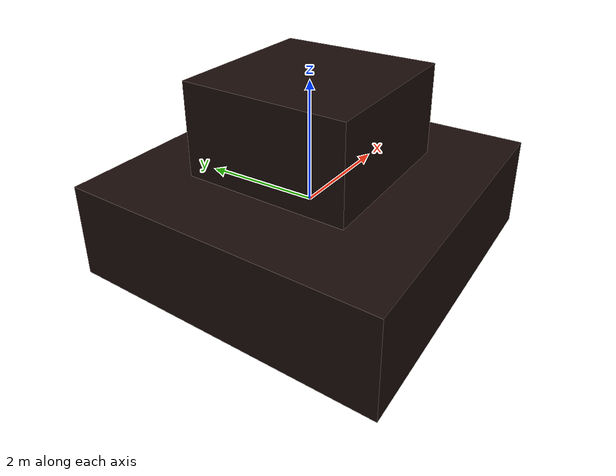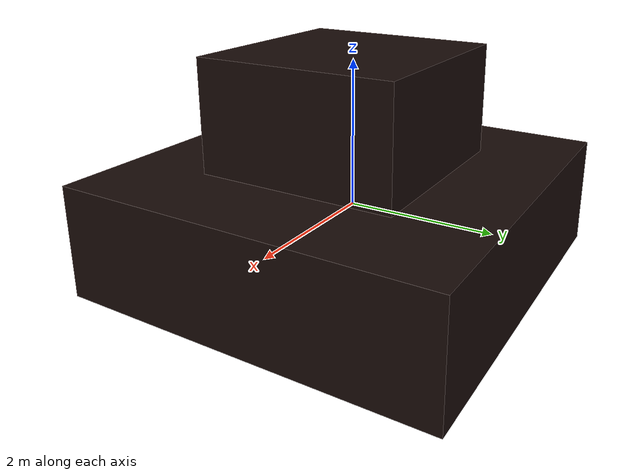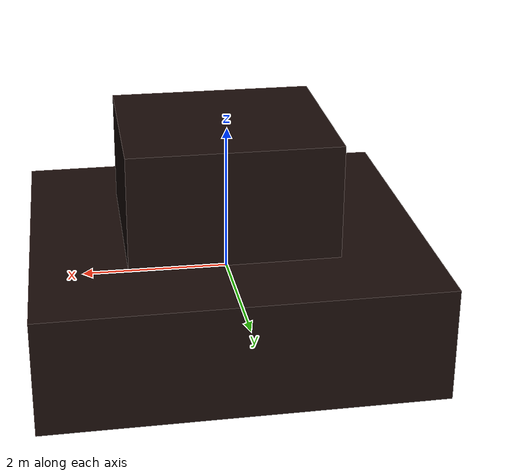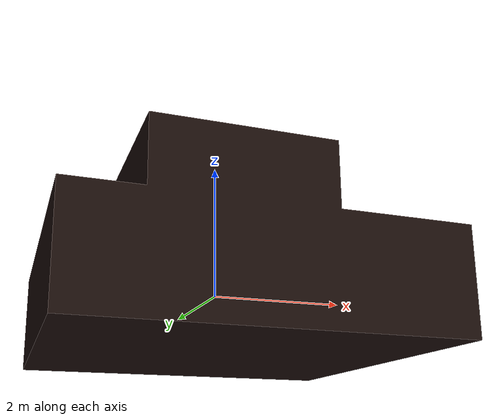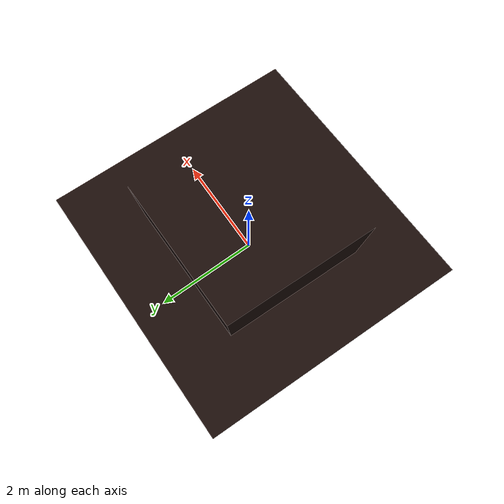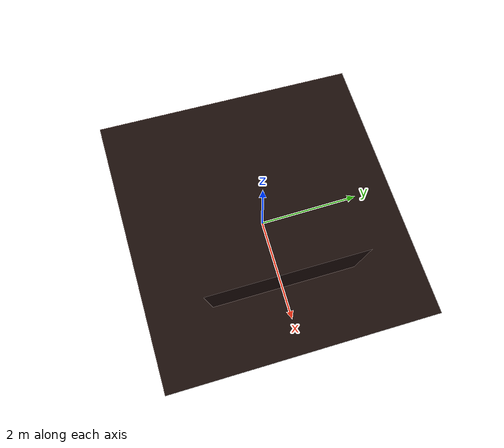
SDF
<?xml version='1.0'?>
<sdf version="1.4">
  <model name="park_statue">
    <static>true</static>
    <link name="link">
      <collision name="collision">
        <geometry>
          <mesh>
            <uri>model://park_statue/meshes/collision.dae</uri>
          </mesh>
        </geometry>
      </collision>
      <visual name="visual">
        <geometry>
          <mesh>
            <uri>model://park_statue/meshes/park_statue.dae</uri>
          </mesh>
        </geometry>
      </visual>
    </link>
  </model>
</sdf>
